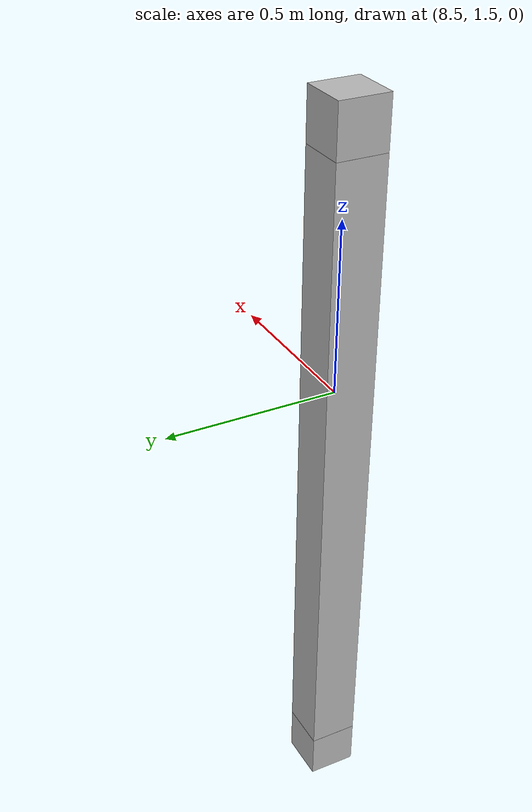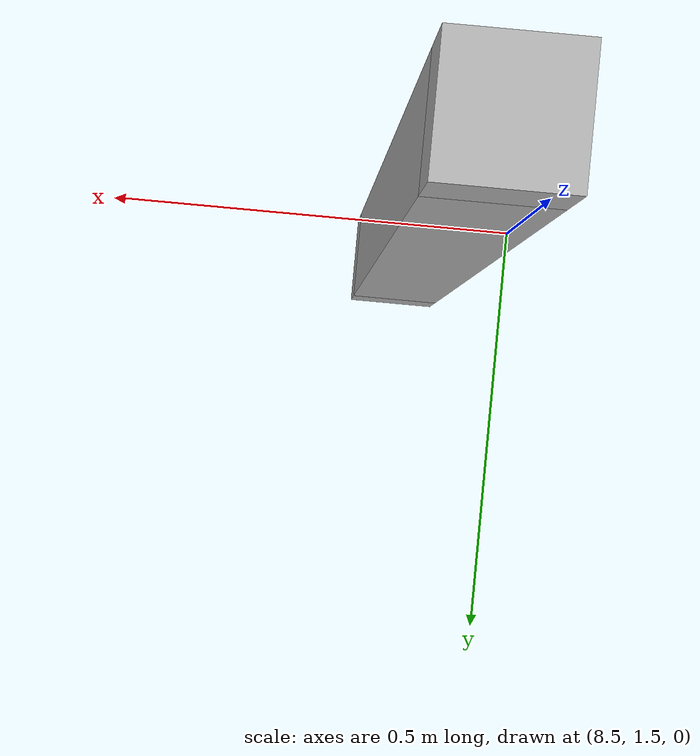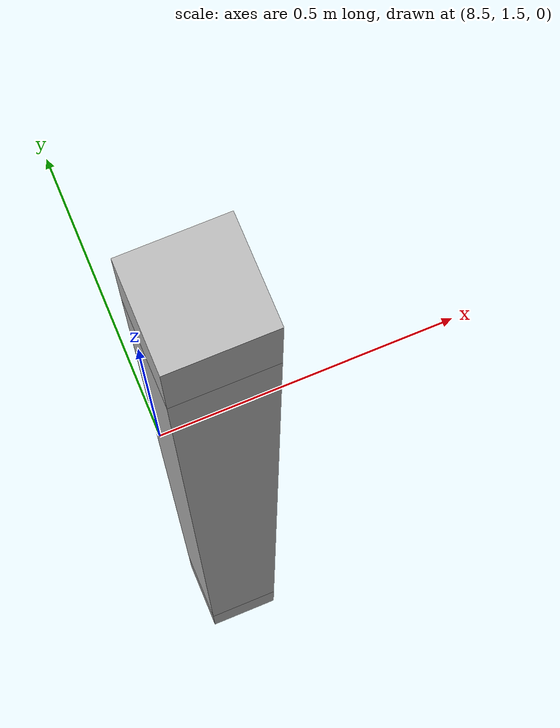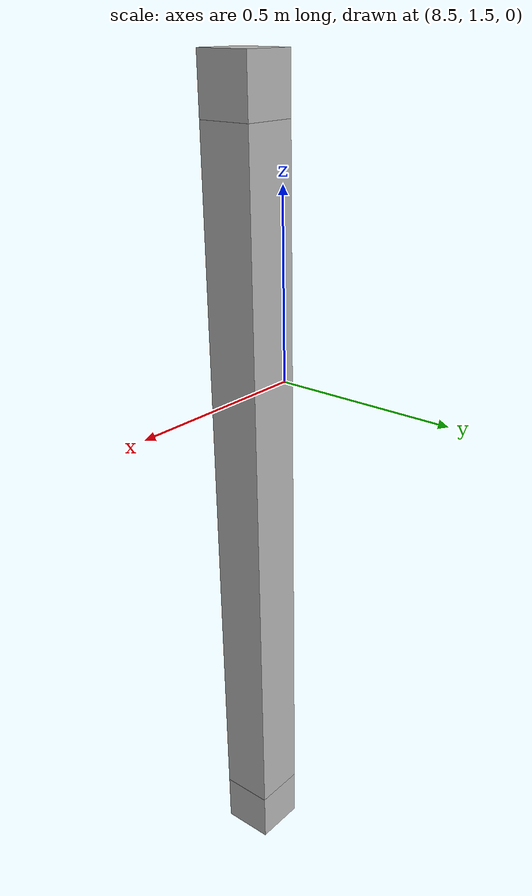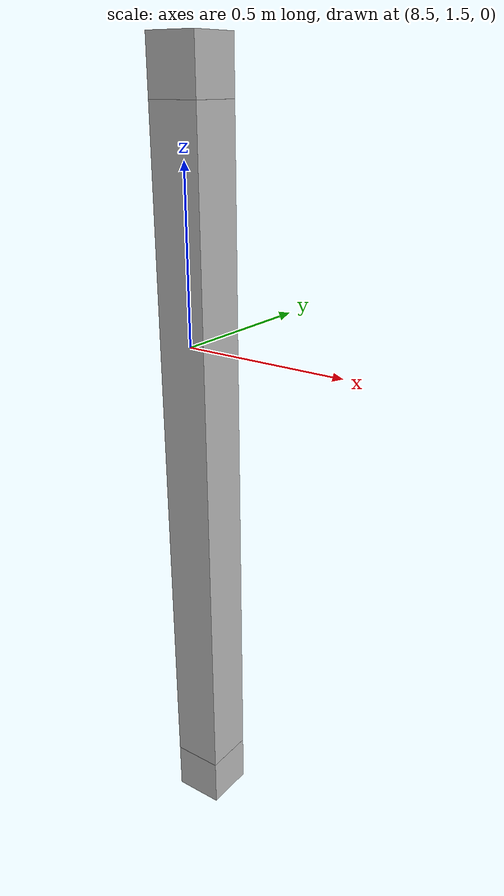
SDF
<sdf version="1.7">
 <world name="default">
  <model name="orthogonal_747_2.000.15_TS">
   <static>1</static>
   <link name="u_link_0_3_7">
    <inertial>
     <mass>1</mass>
     <inertia>
      <ixx>0.166667</ixx>
      <ixy>0</ixy>
      <ixz>0</ixz>
      <iyy>0.166667</iyy>
      <iyz>0</iyz>
      <izz>0.166667</izz>
     </inertia>
    </inertial>
    <pose>15.05 6.45 1.075 0 -0 0</pose>
    <visual name="visual_0">
     <laser_retro>638</laser_retro>
     <geometry><box><size>0.15 1e-06 0.15</size></box></geometry>
     <material>
      <script><name>Gazebo/Grey</name><uri>file://media/materials/scripts/gazebo.material</uri></script>
      <shader type="pixel"><normal_map>__default__</normal_map></shader>
      <ambient>0.678 0.498 0.659 1</ambient>
      <diffuse>0.7 0.7 0.7 1</diffuse>
      <specular>0.01 0.01 0.01 1</specular>
      <emissive>0 0 0 1</emissive>
     </material>
     <pose>0 -0.075 0 0 -0 0</pose>
     <transparency>1</transparency>
    </visual>
    <visual name="visual_1">
     <laser_retro>639</laser_retro>
     <geometry><box><size>0.15 1e-06 0.15</size></box></geometry>
     <material>
      <script><name>Gazebo/Grey</name><uri>file://media/materials/scripts/gazebo.material</uri></script>
      <shader type="pixel"><normal_map>__default__</normal_map></shader>
      <ambient>0.447 0.624 0.812 1</ambient>
      <diffuse>0.7 0.7 0.7 1</diffuse>
      <specular>0.01 0.01 0.01 1</specular>
      <emissive>0 0 0 1</emissive>
     </material>
     <pose>0 0.075 0 0 -0 0</pose>
     <transparency>1</transparency>
    </visual>
    <visual name="visual_2">
     <laser_retro>640</laser_retro>
     <geometry><box><size>0.15 0.15 1e-06</size></box></geometry>
     <material>
      <script><name>Gazebo/Grey</name><uri>file://media/materials/scripts/gazebo.material</uri></script>
      <shader type="pixel"><normal_map>__default__</normal_map></shader>
      <ambient>0.988 0.686 0.243 1</ambient>
      <diffuse>0.7 0.7 0.7 1</diffuse>
      <specular>0.01 0.01 0.01 1</specular>
      <emissive>0 0 0 1</emissive>
     </material>
     <pose>0 0 -0.075 0 -0 0</pose>
     <transparency>1</transparency>
    </visual>
    <visual name="visual_3">
     <laser_retro>641</laser_retro>
     <geometry><box><size>1e-06 0.15 0.15</size></box></geometry>
     <material>
      <script><name>Gazebo/Grey</name><uri>file://media/materials/scripts/gazebo.material</uri></script>
      <shader type="pixel"><normal_map>__default__</normal_map></shader>
      <ambient>0.988 0.914 0.31 1</ambient>
      <diffuse>0.7 0.7 0.7 1</diffuse>
      <specular>0.01 0.01 0.01 1</specular>
      <emissive>0 0 0 1</emissive>
     </material>
     <pose>0.075 0 0 0 -0 0</pose>
     <transparency>1</transparency>
    </visual>
    <visual name="visual_4">
     <laser_retro>642</laser_retro>
     <geometry><box><size>0.15 0.15 1e-06</size></box></geometry>
     <material>
      <script><name>Gazebo/Grey</name><uri>file://media/materials/scripts/gazebo.material</uri></script>
      <shader type="pixel"><normal_map>__default__</normal_map></shader>
      <ambient>0.937 0.161 0.161 1</ambient>
      <diffuse>0.7 0.7 0.7 1</diffuse>
      <specular>0.01 0.01 0.01 1</specular>
      <emissive>0 0 0 1</emissive>
     </material>
     <pose>0 0 0.075 0 -0 0</pose>
     <transparency>1</transparency>
    </visual>
    <visual name="visual_5">
     <laser_retro>643</laser_retro>
     <geometry><box><size>1e-06 0.15 0.15</size></box></geometry>
     <material>
      <script><name>Gazebo/Grey</name><uri>file://media/materials/scripts/gazebo.material</uri></script>
      <shader type="pixel"><normal_map>__default__</normal_map></shader>
      <ambient>0.541 0.886 0.204 1</ambient>
      <diffuse>0.7 0.7 0.7 1</diffuse>
      <specular>0.01 0.01 0.01 1</specular>
      <emissive>0 0 0 1</emissive>
     </material>
     <pose>-0.075 0 0 0 -0 0</pose>
     <transparency>1</transparency>
    </visual>
    <visual name="visual_texture">
     <geometry><box><size>0.149985 0.149985 0.149985</size></box></geometry>
     <material>
      <script>
       <uri>model://BASE_MODELS/simple_block_v2_textured/materials/scripts</uri>
       <uri>model://BASE_MODELS/simple_block_v2_textured/materials/textures</uri>
       <name>metal</name>
      </script>
     </material>
     <laser_retro>644</laser_retro>
    </visual>
    <collision name="collision">
     <geometry><box><size>0.15 0.15 0.15</size></box></geometry>
     <surface>
      <friction>
       <ode><mu>1</mu><mu2>1</mu2><fdir1>0 0 0</fdir1><slip1>0</slip1><slip2>0</slip2></ode>
       <torsional>
        <coefficient>1</coefficient>
        <patch_radius>0</patch_radius>
        <surface_radius>0</surface_radius>
        <use_patch_radius>1</use_patch_radius>
        <ode><slip>0</slip></ode>
       </torsional>
      </friction>
      <bounce><restitution_coefficient>0</restitution_coefficient><threshold>1e+06</threshold></bounce>
      <contact>
       <collide_without_contact>0</collide_without_contact>
       <collide_without_contact_bitmask>1</collide_without_contact_bitmask>
       <collide_bitmask>1</collide_bitmask>
       <ode>
        <soft_cfm>0</soft_cfm>
        <soft_erp>0.2</soft_erp>
        <kp>1e+13</kp>
        <kd>1</kd>
        <max_vel>0.01</max_vel>
        <min_depth>0</min_depth>
       </ode>
       <bullet>
        <split_impulse>1</split_impulse>
        <split_impulse_penetration_threshold>-0.01</split_impulse_penetration_threshold>
        <soft_cfm>0</soft_cfm>
        <soft_erp>0.2</soft_erp>
        <kp>1e+13</kp>
        <kd>1</kd>
       </bullet>
      </contact>
     </surface>
    </collision>
   </link>
   <link name="u_link_1_3_7">
    <inertial>
     <mass>1</mass>
     <inertia>
      <ixx>0.166667</ixx>
      <ixy>0</ixy>
      <ixz>0</ixz>
      <iyy>0.166667</iyy>
      <iyz>0</iyz>
      <izz>0.166667</izz>
     </inertia>
    </inertial>
    <pose>15.05 6.45 3.225 0 -0 0</pose>
    <visual name="visual_0">
     <laser_retro>1478</laser_retro>
     <geometry><box><size>0.15 1e-06 0.15</size></box></geometry>
     <material>
      <script><name>Gazebo/Grey</name><uri>file://media/materials/scripts/gazebo.material</uri></script>
      <shader type="pixel"><normal_map>__default__</normal_map></shader>
      <ambient>0.678 0.498 0.659 1</ambient>
      <diffuse>0.7 0.7 0.7 1</diffuse>
      <specular>0.01 0.01 0.01 1</specular>
      <emissive>0 0 0 1</emissive>
     </material>
     <pose>0 -0.075 0 0 -0 0</pose>
     <transparency>1</transparency>
    </visual>
    <visual name="visual_1">
     <laser_retro>1479</laser_retro>
     <geometry><box><size>0.15 1e-06 0.15</size></box></geometry>
     <material>
      <script><name>Gazebo/Grey</name><uri>file://media/materials/scripts/gazebo.material</uri></script>
      <shader type="pixel"><normal_map>__default__</normal_map></shader>
      <ambient>0.447 0.624 0.812 1</ambient>
      <diffuse>0.7 0.7 0.7 1</diffuse>
      <specular>0.01 0.01 0.01 1</specular>
      <emissive>0 0 0 1</emissive>
     </material>
     <pose>0 0.075 0 0 -0 0</pose>
     <transparency>1</transparency>
    </visual>
    <visual name="visual_2">
     <laser_retro>1480</laser_retro>
     <geometry><box><size>0.15 0.15 1e-06</size></box></geometry>
     <material>
      <script><name>Gazebo/Grey</name><uri>file://media/materials/scripts/gazebo.material</uri></script>
      <shader type="pixel"><normal_map>__default__</normal_map></shader>
      <ambient>0.988 0.686 0.243 1</ambient>
      <diffuse>0.7 0.7 0.7 1</diffuse>
      <specular>0.01 0.01 0.01 1</specular>
      <emissive>0 0 0 1</emissive>
     </material>
     <pose>0 0 -0.075 0 -0 0</pose>
     <transparency>1</transparency>
    </visual>
    <visual name="visual_3">
     <laser_retro>1481</laser_retro>
     <geometry><box><size>1e-06 0.15 0.15</size></box></geometry>
     <material>
      <script><name>Gazebo/Grey</name><uri>file://media/materials/scripts/gazebo.material</uri></script>
      <shader type="pixel"><normal_map>__default__</normal_map></shader>
      <ambient>0.988 0.914 0.31 1</ambient>
      <diffuse>0.7 0.7 0.7 1</diffuse>
      <specular>0.01 0.01 0.01 1</specular>
      <emissive>0 0 0 1</emissive>
     </material>
     <pose>0.075 0 0 0 -0 0</pose>
     <transparency>1</transparency>
    </visual>
    <visual name="visual_4">
     <laser_retro>1482</laser_retro>
     <geometry><box><size>0.15 0.15 1e-06</size></box></geometry>
     <material>
      <script><name>Gazebo/Grey</name><uri>file://media/materials/scripts/gazebo.material</uri></script>
      <shader type="pixel"><normal_map>__default__</normal_map></shader>
      <ambient>0.937 0.161 0.161 1</ambient>
      <diffuse>0.7 0.7 0.7 1</diffuse>
      <specular>0.01 0.01 0.01 1</specular>
      <emissive>0 0 0 1</emissive>
     </material>
     <pose>0 0 0.075 0 -0 0</pose>
     <transparency>1</transparency>
    </visual>
    <visual name="visual_5">
     <laser_retro>1483</laser_retro>
     <geometry><box><size>1e-06 0.15 0.15</size></box></geometry>
     <material>
      <script><name>Gazebo/Grey</name><uri>file://media/materials/scripts/gazebo.material</uri></script>
      <shader type="pixel"><normal_map>__default__</normal_map></shader>
      <ambient>0.541 0.886 0.204 1</ambient>
      <diffuse>0.7 0.7 0.7 1</diffuse>
      <specular>0.01 0.01 0.01 1</specular>
      <emissive>0 0 0 1</emissive>
     </material>
     <pose>-0.075 0 0 0 -0 0</pose>
     <transparency>1</transparency>
    </visual>
    <visual name="visual_texture">
     <geometry><box><size>0.149985 0.149985 0.149985</size></box></geometry>
     <material>
      <script>
       <uri>model://BASE_MODELS/simple_block_v2_textured/materials/scripts</uri>
       <uri>model://BASE_MODELS/simple_block_v2_textured/materials/textures</uri>
       <name>metal</name>
      </script>
     </material>
     <laser_retro>1484</laser_retro>
    </visual>
    <collision name="collision">
     <geometry><box><size>0.15 0.15 0.15</size></box></geometry>
     <surface>
      <friction>
       <ode><mu>1</mu><mu2>1</mu2><fdir1>0 0 0</fdir1><slip1>0</slip1><slip2>0</slip2></ode>
       <torsional>
        <coefficient>1</coefficient>
        <patch_radius>0</patch_radius>
        <surface_radius>0</surface_radius>
        <use_patch_radius>1</use_patch_radius>
        <ode><slip>0</slip></ode>
       </torsional>
      </friction>
      <bounce><restitution_coefficient>0</restitution_coefficient><threshold>1e+06</threshold></bounce>
      <contact>
       <collide_without_contact>0</collide_without_contact>
       <collide_without_contact_bitmask>1</collide_without_contact_bitmask>
       <collide_bitmask>1</collide_bitmask>
       <ode>
        <soft_cfm>0</soft_cfm>
        <soft_erp>0.2</soft_erp>
        <kp>1e+13</kp>
        <kd>1</kd>
        <max_vel>0.01</max_vel>
        <min_depth>0</min_depth>
       </ode>
       <bullet>
        <split_impulse>1</split_impulse>
        <split_impulse_penetration_threshold>-0.01</split_impulse_penetration_threshold>
        <soft_cfm>0</soft_cfm>
        <soft_erp>0.2</soft_erp>
        <kp>1e+13</kp>
        <kd>1</kd>
       </bullet>
      </contact>
     </surface>
    </collision>
   </link>
   <link name="z_link_1_3_7">
    <inertial>
     <mass>1</mass>
     <inertia>
      <ixx>0.166667</ixx>
      <ixy>0</ixy>
      <ixz>0</ixz>
      <iyy>0.166667</iyy>
      <iyz>0</iyz>
      <izz>0.166667</izz>
     </inertia>
    </inertial>
    <pose>15.05 6.45 2.15 0 -0 0</pose>
    <visual name="visual_0">
     <laser_retro>1485</laser_retro>
     <geometry><box><size>0.15 1e-06 2</size></box></geometry>
     <material>
      <script><name>Gazebo/Grey</name><uri>file://media/materials/scripts/gazebo.material</uri></script>
      <shader type="pixel"><normal_map>__default__</normal_map></shader>
      <ambient>0.678 0.498 0.659 1</ambient>
      <diffuse>0.7 0.7 0.7 1</diffuse>
      <specular>0.01 0.01 0.01 1</specular>
      <emissive>0 0 0 1</emissive>
     </material>
     <pose>0 -0.075 0 0 -0 0</pose>
     <transparency>1</transparency>
    </visual>
    <visual name="visual_1">
     <laser_retro>1486</laser_retro>
     <geometry><box><size>0.15 1e-06 2</size></box></geometry>
     <material>
      <script><name>Gazebo/Grey</name><uri>file://media/materials/scripts/gazebo.material</uri></script>
      <shader type="pixel"><normal_map>__default__</normal_map></shader>
      <ambient>0.447 0.624 0.812 1</ambient>
      <diffuse>0.7 0.7 0.7 1</diffuse>
      <specular>0.01 0.01 0.01 1</specular>
      <emissive>0 0 0 1</emissive>
     </material>
     <pose>0 0.075 0 0 -0 0</pose>
     <transparency>1</transparency>
    </visual>
    <visual name="visual_2">
     <laser_retro>1487</laser_retro>
     <geometry><box><size>0.15 0.15 1e-06</size></box></geometry>
     <material>
      <script><name>Gazebo/Grey</name><uri>file://media/materials/scripts/gazebo.material</uri></script>
      <shader type="pixel"><normal_map>__default__</normal_map></shader>
      <ambient>0.988 0.686 0.243 1</ambient>
      <diffuse>0.7 0.7 0.7 1</diffuse>
      <specular>0.01 0.01 0.01 1</specular>
      <emissive>0 0 0 1</emissive>
     </material>
     <pose>0 0 -1 0 -0 0</pose>
     <transparency>1</transparency>
    </visual>
    <visual name="visual_3">
     <laser_retro>1488</laser_retro>
     <geometry><box><size>1e-06 0.15 2</size></box></geometry>
     <material>
      <script><name>Gazebo/Grey</name><uri>file://media/materials/scripts/gazebo.material</uri></script>
      <shader type="pixel"><normal_map>__default__</normal_map></shader>
      <ambient>0.988 0.914 0.31 1</ambient>
      <diffuse>0.7 0.7 0.7 1</diffuse>
      <specular>0.01 0.01 0.01 1</specular>
      <emissive>0 0 0 1</emissive>
     </material>
     <pose>0.075 0 0 0 -0 0</pose>
     <transparency>1</transparency>
    </visual>
    <visual name="visual_4">
     <laser_retro>1489</laser_retro>
     <geometry><box><size>0.15 0.15 1e-06</size></box></geometry>
     <material>
      <script><name>Gazebo/Grey</name><uri>file://media/materials/scripts/gazebo.material</uri></script>
      <shader type="pixel"><normal_map>__default__</normal_map></shader>
      <ambient>0.937 0.161 0.161 1</ambient>
      <diffuse>0.7 0.7 0.7 1</diffuse>
      <specular>0.01 0.01 0.01 1</specular>
      <emissive>0 0 0 1</emissive>
     </material>
     <pose>0 0 1 0 -0 0</pose>
     <transparency>1</transparency>
    </visual>
    <visual name="visual_5">
     <laser_retro>1490</laser_retro>
     <geometry><box><size>1e-06 0.15 2</size></box></geometry>
     <material>
      <script><name>Gazebo/Grey</name><uri>file://media/materials/scripts/gazebo.material</uri></script>
      <shader type="pixel"><normal_map>__default__</normal_map></shader>
      <ambient>0.541 0.886 0.204 1</ambient>
      <diffuse>0.7 0.7 0.7 1</diffuse>
      <specular>0.01 0.01 0.01 1</specular>
      <emissive>0 0 0 1</emissive>
     </material>
     <pose>-0.075 0 0 0 -0 0</pose>
     <transparency>1</transparency>
    </visual>
    <visual name="visual_texture">
     <geometry><box><size>0.149985 0.149985 1.9998</size></box></geometry>
     <material>
      <script>
       <uri>model://BASE_MODELS/simple_block_v2_textured/materials/scripts</uri>
       <uri>model://BASE_MODELS/simple_block_v2_textured/materials/textures</uri>
       <name>metal</name>
      </script>
     </material>
     <laser_retro>1491</laser_retro>
    </visual>
    <collision name="collision">
     <geometry><box><size>0.15 0.15 2</size></box></geometry>
     <surface>
      <friction>
       <ode><mu>1</mu><mu2>1</mu2><fdir1>0 0 0</fdir1><slip1>0</slip1><slip2>0</slip2></ode>
       <torsional>
        <coefficient>1</coefficient>
        <patch_radius>0</patch_radius>
        <surface_radius>0</surface_radius>
        <use_patch_radius>1</use_patch_radius>
        <ode><slip>0</slip></ode>
       </torsional>
      </friction>
      <bounce><restitution_coefficient>0</restitution_coefficient><threshold>1e+06</threshold></bounce>
      <contact>
       <collide_without_contact>0</collide_without_contact>
       <collide_without_contact_bitmask>1</collide_without_contact_bitmask>
       <collide_bitmask>1</collide_bitmask>
       <ode>
        <soft_cfm>0</soft_cfm>
        <soft_erp>0.2</soft_erp>
        <kp>1e+13</kp>
        <kd>1</kd>
        <max_vel>0.01</max_vel>
        <min_depth>0</min_depth>
       </ode>
       <bullet>
        <split_impulse>1</split_impulse>
        <split_impulse_penetration_threshold>-0.01</split_impulse_penetration_threshold>
        <soft_cfm>0</soft_cfm>
        <soft_erp>0.2</soft_erp>
        <kp>1e+13</kp>
        <kd>1</kd>
       </bullet>
      </contact>
     </surface>
    </collision>
   </link>
   <pose>-6.47624 -5 -2.5 0 -0 0</pose>
  </model>
 </world>
</sdf>
